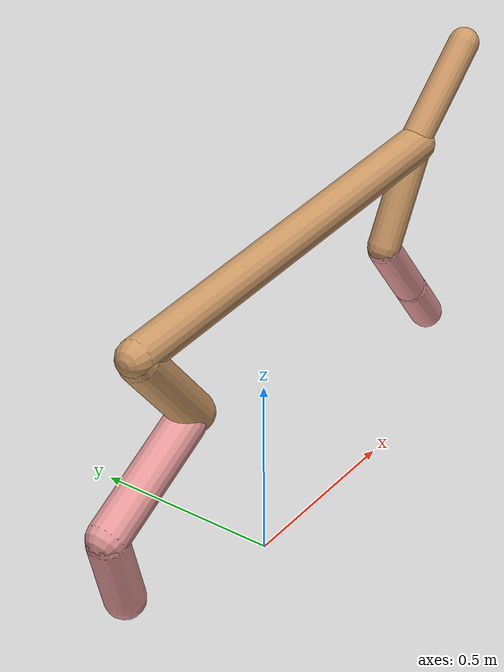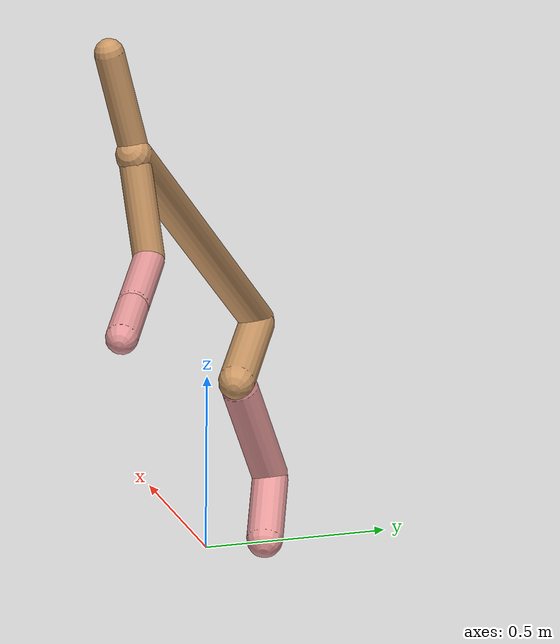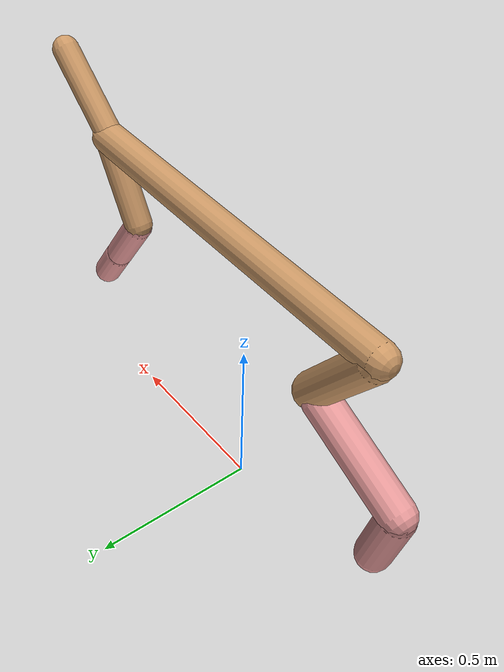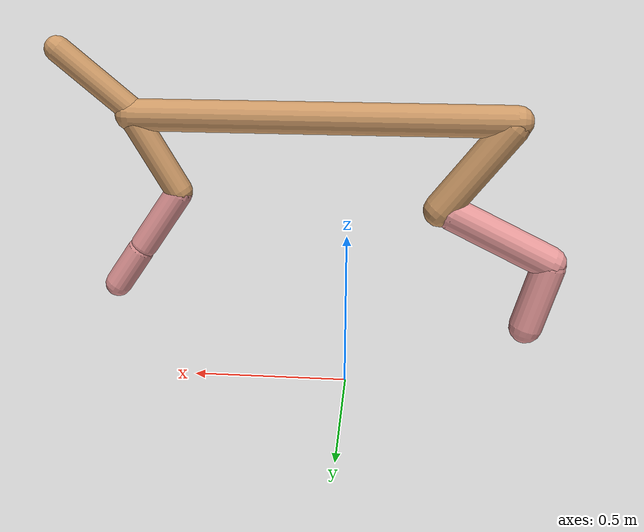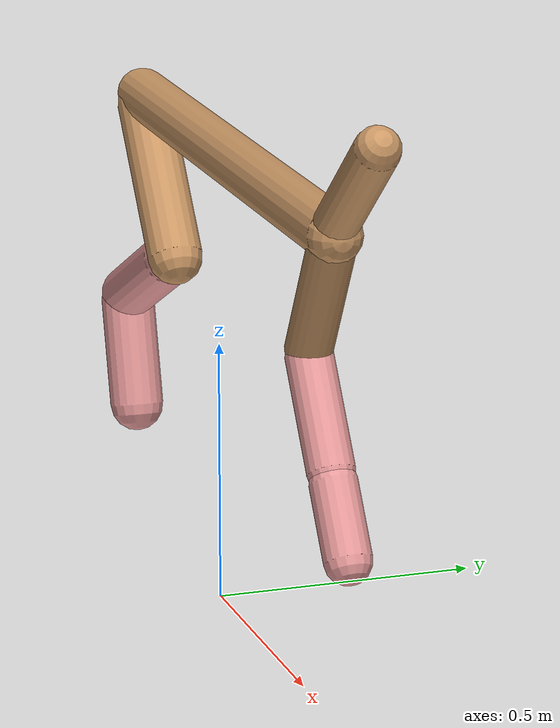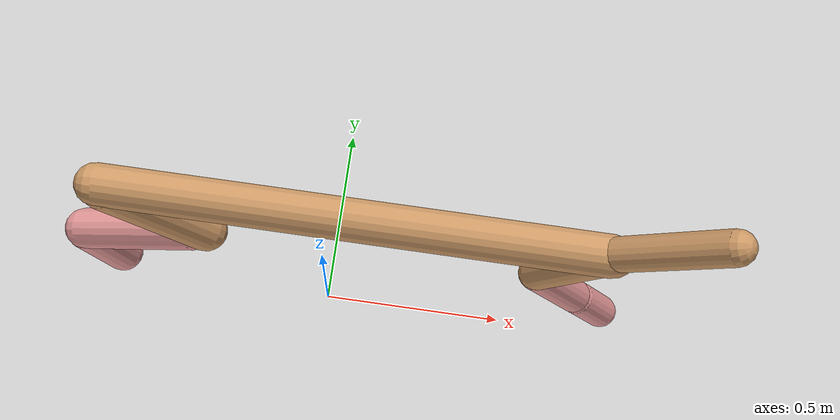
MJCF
<mujoco model="cheetah">
  <compiler angle="radian" coordinate="local" inertiafromgeom="true" settotalmass="14" />
  <default>
    <joint armature=".1" damping=".01" limited="true" solimplimit="0 .8 .03" solreflimit=".02 1" stiffness="8" />
    <geom conaffinity="0" condim="3" contype="1" friction="0.8 .1 .1" rgba="0.8 0.6 .4 1" solimp="0.0 0.8 0.01" solref="0.02 1" />
    <motor ctrllimited="true" ctrlrange="-1 1" />
  </default>
  <size nstack="300000" nuser_geom="1" />
  <option gravity="0 0 -9.81" timestep="0.01" />
  <worldbody>
    <body name="torso" pos="0.0 0.0 0.8746445317653593">
      <joint armature="0" axis="1 0 0" damping="0" limited="false" name="ignorex" pos="0 0 0" stiffness="0" type="slide" />
      <joint armature="0" axis="0 0 1" damping="0" limited="false" name="ignorez" pos="0 0 0" stiffness="0" type="slide" />
      <joint armature="0" axis="0 1 0" damping="0" limited="false" name="ignorey" pos="0 0 0" stiffness="0" type="hinge" />
      <geom fromto="-0.5 0.0 0.0 0.6666106347683702 0.0 0.0" name="torso" size="0.04962883682607013" type="capsule" />
      <geom axisangle="0 1 0 .87" name="head" pos="0.7666106347683702 0.0 0.1" size="0.0402664830044421 0.15" type="capsule" />

      <body name="bthigh" pos="-.5 0 0">
        <joint axis="0 1 0" damping="6" name="bthigh" pos="0 0 0" range="-.52 1.05" stiffness="240" type="hinge" />
        <geom axisangle="0 1 0 -3.8" name="bthigh" pos="0.11308473245714395 0.0 -0.14701015219428712" size="0.05303068752330679 0.16646055686947211" type="capsule" />
        <body name="bshin" pos="0.18616946491428787 0.0 -0.28402030438857423">
          <joint axis="0 1 0" damping="4.5" name="bshin" pos="0 0 0" range="-.785 .785" stiffness="180" type="hinge" />
          <geom axisangle="0 1 0 -2.03" name="bshin" pos="-0.1598567988945406 0.0 -0.0799283994472703" rgba="0.9 0.6 0.6 1" size="0.05303068752330679 0.17220057607186773" type="capsule" />
          <body name="bfoot" pos="-0.3197135977890812 0.0 -0.1598567988945406">
            <joint axis="0 1 0" damping="3" name="bfoot" pos="0 0 0" range="-.4 .785" stiffness="120" type="hinge" />
            <geom axisangle="0 1 0 -.27" name="bfoot" pos="0.03411068145135009 0.0 -0.11029120335936529" rgba="0.9 0.6 0.6 1" size="0.05303068752330679 0.10791236100503711" type="capsule" />
            <inertial mass="10" />
          </body>
        </body>
      </body>
      <body name="fthigh" pos="0.6666106347683702 0.0 0.0">
        <joint axis="0 1 0" damping="4.5" name="fthigh" pos="0 0 0" range="-1.5 0.8" stiffness="180" type="hinge" />
        <geom axisangle="0 1 0 .52" name="fthigh" pos="-0.07110258370480045 0.0 -0.12189014349394361" size="0.043081708464237686 0.1351882260518029" type="capsule" />
        <body name="fshin" pos="-0.1422051674096009 0.0 -0.24378028698788723">
          <joint axis="0 1 0" damping="3" name="fshin" pos="0 0 0" range="-1.2 1.1" stiffness="120" type="hinge" />
          <geom axisangle="0 1 0 -.6" name="fshin" pos="0.0660210953563813 0.0 -0.09141382433960488" rgba="0.9 0.6 0.6 1" size="0.043081708464237686 0.10774399971045943" type="capsule" />
          <body name="ffoot" pos="0.1320421907127626 0.0 -0.18282764867920975">
            <joint axis="0 1 0" damping="1.5" name="ffoot" pos="0 0 0" range="-3.1 -0.3" stiffness="60" type="hinge" />
            <geom axisangle="0 1 0 -.6" name="ffoot" pos="0.045622789394222305 0.0 -0.07096878350212359" rgba="0.9 0.6 0.6 1" size="0.043081708464237686 0.07115169792200152" type="capsule" />
            <inertial mass="10" />
          </body>
        </body>
      </body>
    </body>
  </worldbody>
  <actuator>
    <motor gear="120" joint="bthigh" name="bthigh" />
    <motor gear="90" joint="bshin" name="bshin" />
    <motor gear="60" joint="bfoot" name="bfoot" />
    <motor gear="120" joint="fthigh" name="fthigh" />
    <motor gear="60" joint="fshin" name="fshin" />
    <motor gear="30" joint="ffoot" name="ffoot" />
  </actuator>
</mujoco>
